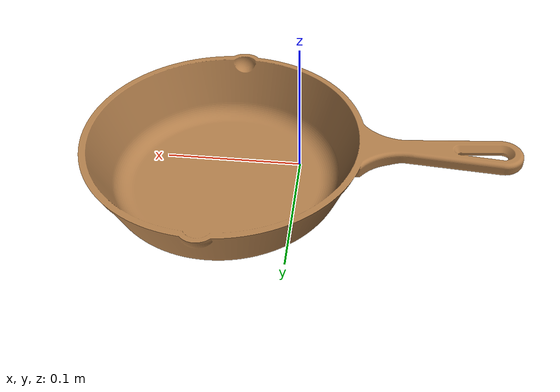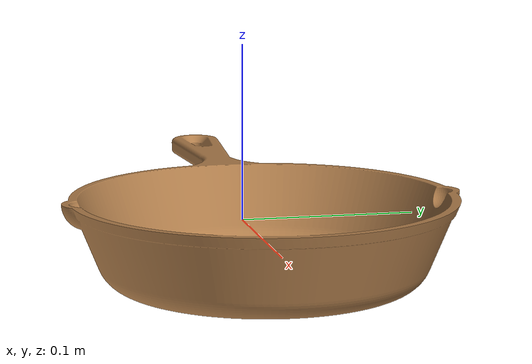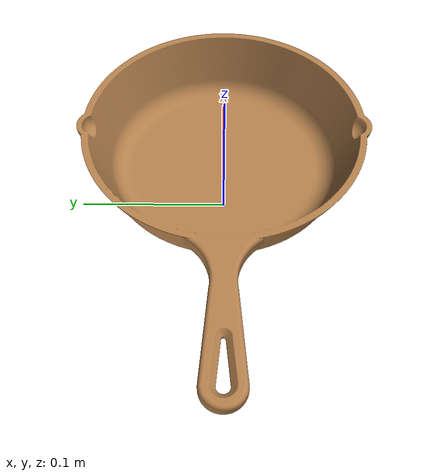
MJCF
<mujoco model="target">
	<compiler meshdir="assets" texturedir="assets" autolimits="true"/>
  <default>
    <default class="visual">
      <geom group="2" type="mesh" contype="0" conaffinity="0"/>
    </default>
    <default class="collision">
      <geom group="3" type="mesh"/>
    </default>
  </default>
  <asset>
    <texture type="2d" name="Woods &amp; Plastics.Finish Carpentry.Wood.Cherry" file="Woods &amp; Plastics.Finish Carpentry.Wood.Cherry.png"/>
    <material name="255,173,105" texture="Woods &amp; Plastics.Finish Carpentry.Wood.Cherry" specular="1.0" shininess="1.0"/>
    <mesh file="object.obj"/>
  </asset>
  <worldbody>
    <body name="object">
      <geom material="255,173,105" mesh="object" class="visual"/>
      <geom mesh="object" class="collision"/>
    </body>
  </worldbody>
</mujoco>
